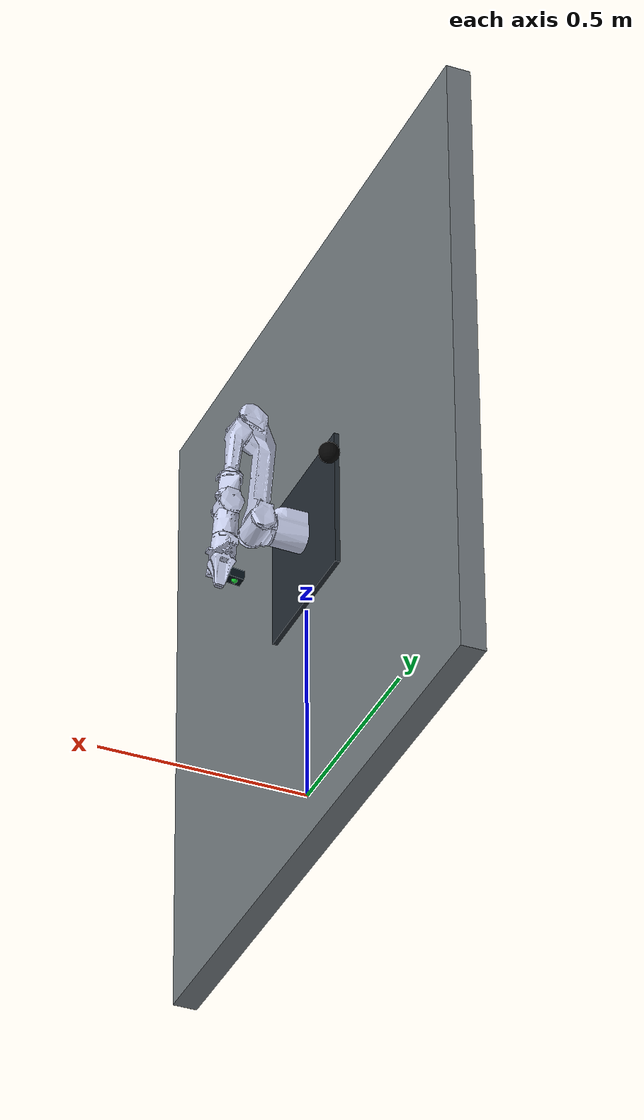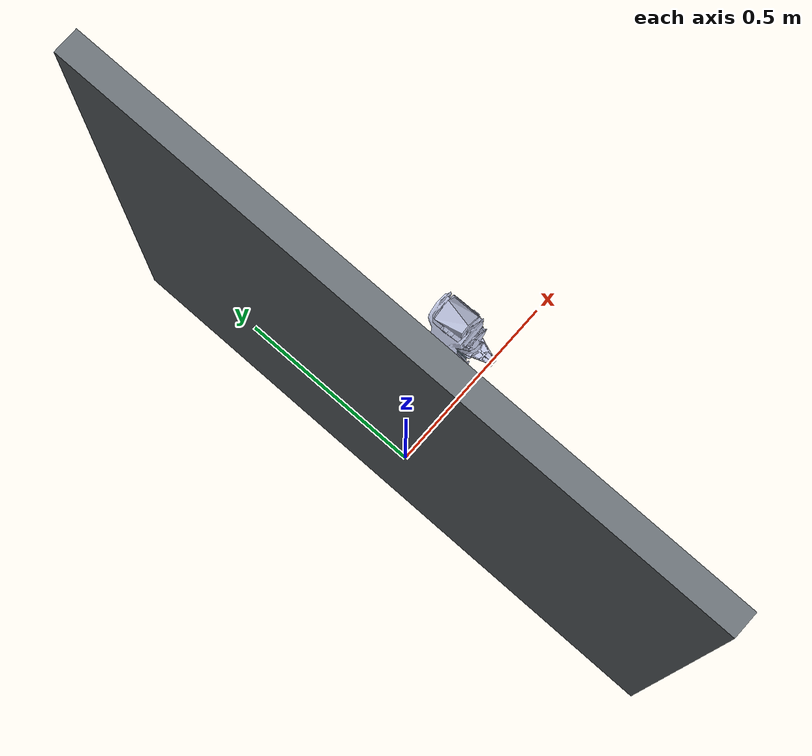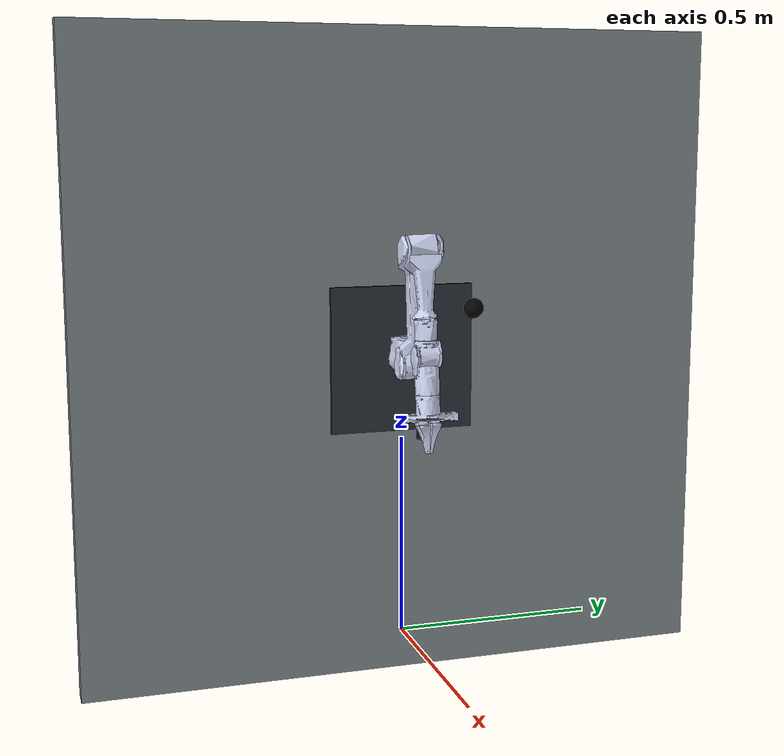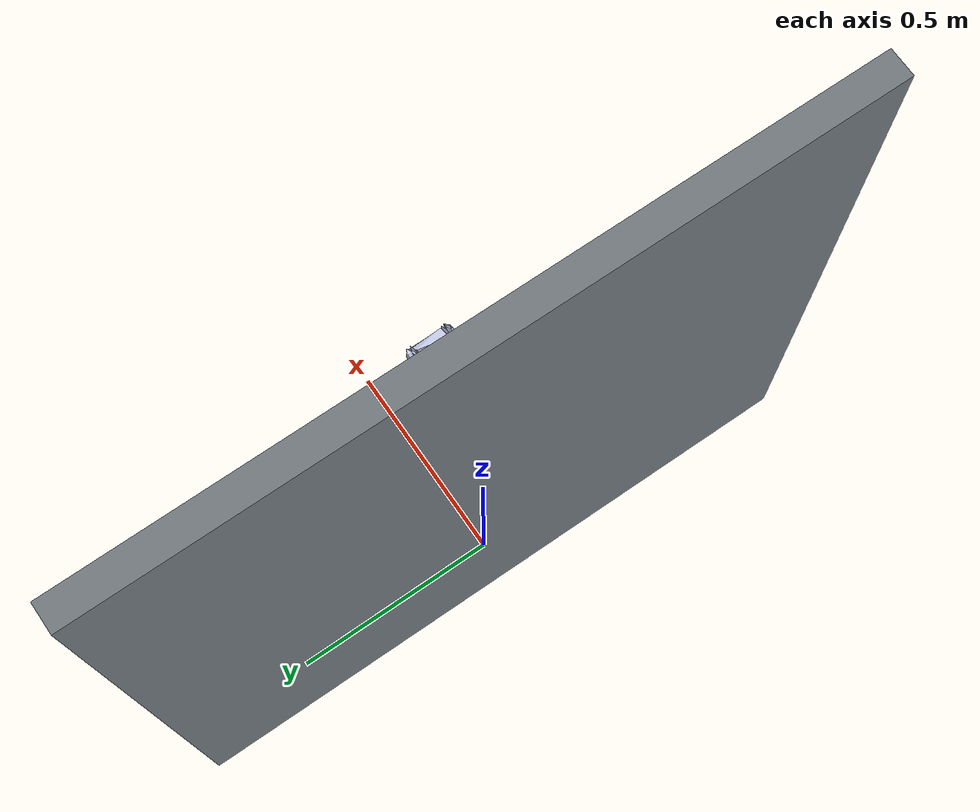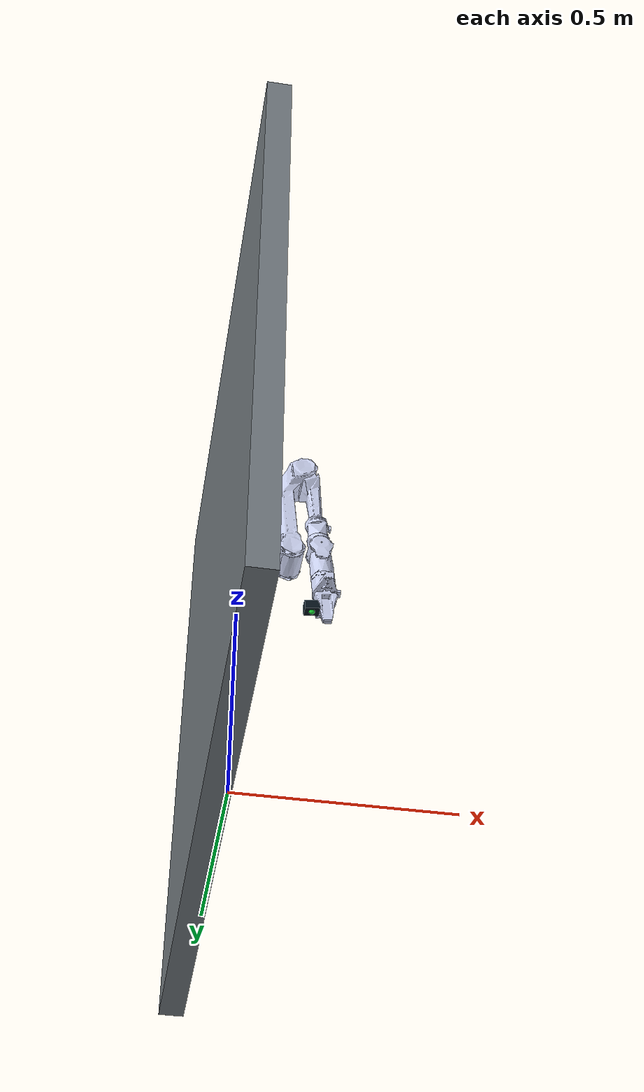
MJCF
<mujoco model="piper_wall_mount">
    <compiler angle="radian" />
    <size njmax="500" nconmax="100" />
    <asset>
        <mesh name="base_link" file="../meshes/base_link.STL" />
        <mesh name="link1" file="../meshes/link1.STL" />
        <mesh name="link2" file="../meshes/link2.STL" />
        <mesh name="link3" file="../meshes/link3.STL" />
        <mesh name="link4" file="../meshes/link4.STL" />
        <mesh name="link5" file="../meshes/link5.STL" />
        <mesh name="link6" file="../meshes/link6.STL" />
        <mesh name="gripper_base" file="../meshes/gripper_base.STL" />
        <mesh name="link7" file="../meshes/link7.STL" />
        <mesh name="link8" file="../meshes/link8.STL" />
    </asset>
    <worldbody>
        <geom name="mount_wall" type="box" pos="-0.035 0 0.70" size="0.03 0.80 0.80" rgba="0.45 0.48 0.50 1" contype="0" conaffinity="0" />
        <geom name="wall_back_plate" type="box" pos="-0.005 0 0.70" size="0.012 0.18 0.18" rgba="0.14 0.17 0.20 1" contype="0" conaffinity="0" />
        <body name="left_eye_observer" pos="0.02 0.18 0.82">
            <geom name="left_eye_camera_body" type="sphere" size="0.025" rgba="0.02 0.02 0.02 1" contype="0" conaffinity="0" />
            <light name="left_eye_key_light" pos="0 0 0" dir="1 0 -0.15" diffuse="0.8 0.8 0.8" specular="0.2 0.2 0.2" />
            <camera name="left_eye_camera" pos="0 0 0" xyaxes="0 -1 0 0 0 1" fovy="80" />
            <site name="left_eye_camera_frame" pos="0 0 0" size="0.01" rgba="0.1 0.4 1.0 1" />
        </body>
        <body name="wall_mount" pos="0 0 0.70" quat="0.7071068 0 0.7071068 0">
            <geom type="mesh" rgba="0.792157 0.819608 0.933333 1" mesh="base_link" />
            <body name="link1" pos="0 0 0.123">
                <inertial pos="0.000121505 0.000104632 -0.00438597" quat="0.682111 0.730899 0.0143111 -0.0175062" mass="0.71" diaginertia="0.000489262 0.000439887 0.000404551" />
                <joint name="joint1" pos="0 0 0" axis="0 0 1" limited="true" range="-2.618 2.168" damping="500"/>
                <geom type="mesh" rgba="0.792157 0.819608 0.933333 1" mesh="link1" />
                <body name="link2" pos="0 0 0" quat="0.0356735 -0.0356786 -0.706207 -0.706205">
                    <inertial pos="0.198666 -0.0109269 0.00142122" quat="0.510131 0.475585 0.525075 0.48773" mass="1.17" diaginertia="0.0679032 0.067745 0.00111966" />
                    <joint name="joint2" pos="0 0 0" axis="0 0 1" limited="true" range="0 3.14" damping="5"/>
                    <geom type="mesh" rgba="0.792157 0.819608 0.933333 1" mesh="link2" />
                    <body name="link3" pos="0.28503 0 0" quat="0.637536 0 0 -0.77042">
                        <inertial pos="-0.0202738 -0.133915 -0.000458683" quat="0.706282 0.705111 0.0532202 0.0339395" mass="0.5" diaginertia="0.0138227 0.0138032 0.000244685" />
                        <joint name="joint3" pos="0 0 0" axis="0 0 1" limited="true" range="-2.967 0" damping="20"/>
                        <geom type="mesh" rgba="0.792157 0.819608 0.933333 1" mesh="link3" />
                        <body name="link4" pos="-0.021984 -0.25075 0" quat="0.707105 0.707108 0 0">
                            <inertial pos="-9.66636e-05 0.000876064 -0.00496881" quat="0.714689 -0.0948484 0.0635223 0.690064" mass="0.38" diaginertia="0.000191586 0.000185052 0.000152863" />
                            <joint name="joint4" pos="0 0 0" axis="0 0 1" limited="true" range="-1.745 1.745" damping="5"/>
                            <geom type="mesh" rgba="0.792157 0.819608 0.933333 1" mesh="link4" />
                            <body name="link5" pos="0 0 0" quat="0.707105 -0.707108 0 0">
                                <inertial pos="-4.10554e-05 -0.0566487 -0.00372058" quat="0.709589 0.704614 0.00134613 -0.00132656" mass="0.383" diaginertia="0.00166169 0.00164328 0.000185028" />
                                <joint name="joint5" pos="0 0 0" axis="0 0 1" limited="true" range="-1.22 1.22" damping="5"/>
                                <geom type="mesh" rgba="0.792157 0.819608 0.933333 1" mesh="link5" />
                                <body name="link6" pos="8.8259e-05 -0.091 0" quat="0.707105 0.707108 0 0">
                                    <inertial pos="-0.000182345 7.94104e-05 0.0316214" quat="0.999977 6.30554e-05 0.00678017 0.000789386" mass="0.456991" diaginertia="0.000938039 0.000723068 0.000395388" />
                                    <joint name="joint6" pos="0 0 0" axis="0 0 1" limited="true" range="-2.0944 2.0944" damping="5"/>
                                    <geom type="mesh" rgba="0.898039 0.917647 0.929412 1" mesh="link6" />
                                    <geom type="mesh" rgba="0.792157 0.819608 0.933333 1" mesh="gripper_base" />
                                    <geom name="hand_depth_camera_body" type="box" pos="0.035 0 0.095" size="0.018 0.014 0.012" rgba="0.03 0.08 0.11 1" contype="0" conaffinity="0" />
                                    <camera name="hand_depth_camera" pos="0.035 0 0.105" euler="0 1.5708 0" fovy="70" />
                                    <camera name="hand_camera" pos="0.035 0 0.105" euler="0 1.5708 0" fovy="70" />
                                    <site name="hand_depth_camera_frame" pos="0.035 0 0.105" euler="0 1.5708 0" size="0.008" rgba="0.1 0.8 0.2 1" />
                                    <body name="link7" pos="0 0 0.1358" quat="0.707105 0.707108 0 0">
                                        <inertial pos="0.000651232 -0.049193 0.00972259" quat="0.477798 0.572974 -0.518028 0.418398" mass="0.025" diaginertia="7.74531e-05 7.36783e-05 5.0886e-06" />
                                        <joint name="joint7" pos="0 0 0" axis="0 0 1" type="slide" limited="true" range="0 0.035" damping="100"/>
                                        <geom type="mesh" rgba="0.792157 0.819608 0.933333 1" mesh="link7" />
                                    </body>
                                    <body name="link8" pos="0 0 0.1358" quat="-2.59734e-06 -2.59735e-06 -0.707108 -0.707105">
                                        <inertial pos="0.000651232 -0.049193 0.00972259" quat="0.477798 0.572974 -0.518028 0.418398" mass="0.025" diaginertia="7.74531e-05 7.36783e-05 5.0886e-06" />
                                        <joint name="joint8" pos="0 0 0" axis="0 0 -1" type="slide" limited="true" range="-0.035 0" damping="100"/>
                                        <geom type="mesh" rgba="0.792157 0.819608 0.933333 1" mesh="link8" />
                                    </body>
                                </body>
                            </body>
                        </body>
                    </body>
                </body>
            </body>
        </body>
    </worldbody>
    <actuator>
        <position name="joint1" ctrllimited="true" ctrlrange="-2.618 2.618" joint="joint1" kp="10000" user="1" forcelimited="false"/>
        <position name="joint2" ctrllimited="true" ctrlrange="0 3.14158" joint="joint2" kp="2000" user="1" forcelimited="false"/>
        <position name="joint3" ctrllimited="true" ctrlrange="-2.697 0" joint="joint3" kp="2000" user="1" forcelimited="false"/>
        <position name="joint4" ctrllimited="true" ctrlrange="-1.832 1.832" joint="joint4" kp="500" user="1" forcelimited="false"/>
        <position name="joint5" ctrllimited="true" ctrlrange="-1.22 1.22" joint="joint5" kp="200" user="1" forcelimited="false"/>
        <position name="joint6" ctrllimited="true" ctrlrange="-3.14158 3.14158" joint="joint6" kp="200" user="1" forcelimited="false"/>
        <position name="joint7" ctrllimited="true" ctrlrange="0 0.0475" joint="joint7" kp="10000" user="1" forcelimited="false" forcerange="-100 100"/>
        <position name="joint8" ctrllimited="true" ctrlrange="-0.0475 0" joint="joint8" kp="10000" user="1" forcelimited="false" forcerange="-100 100"/>
    </actuator>
</mujoco>
